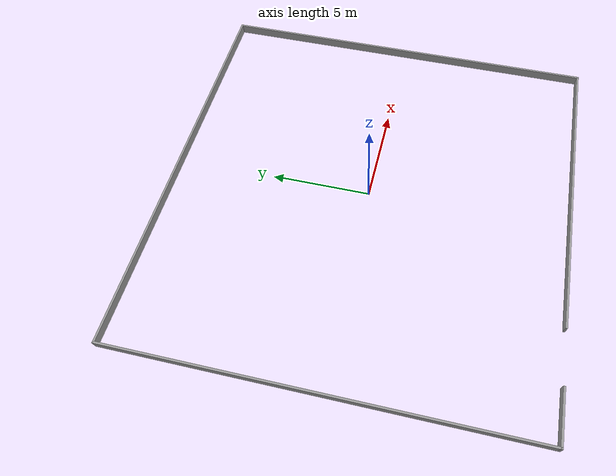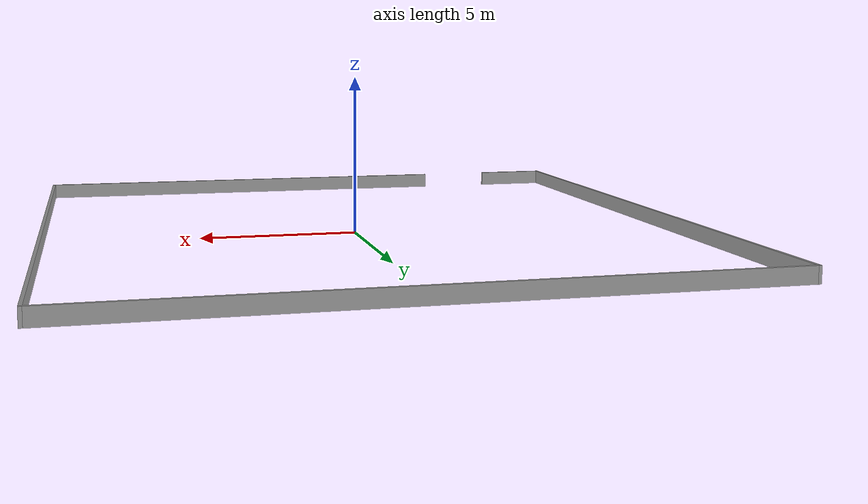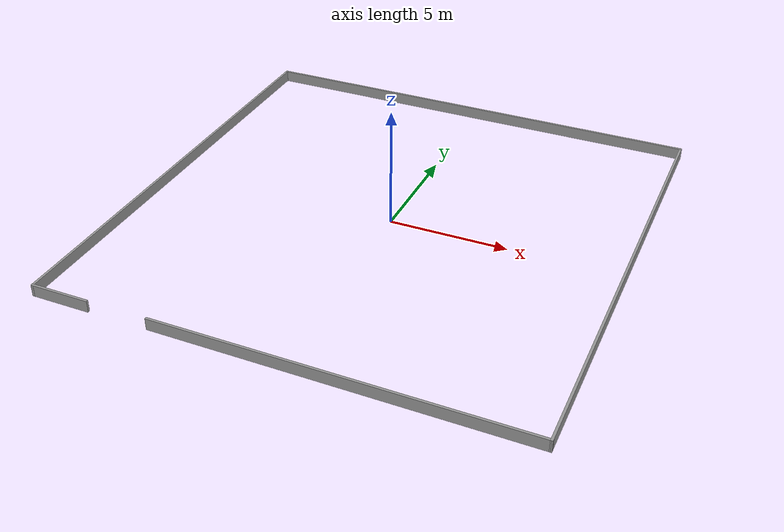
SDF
<?xml version='1.0'?>
<sdf version='1.6'>
  <model name='shape8'>
    <pose frame=''>-0.16497 0.000967 0 0 -0 0</pose>
    <link name='Wall_21'>
      <collision name='Wall_21_Collision'>
        <geometry>
          <box>
            <size>2.5 0.1 0.5</size>
          </box>
        </geometry>
        <pose frame=''>0 0 0.25 0 -0 0</pose>
      </collision>
      <visual name='Wall_21_Visual'>
        <pose frame=''>0 0 0.25 0 -0 0</pose>
        <geometry>
          <box>
            <size>2.5 0.1 0.5</size>
          </box>
        </geometry>
        <material>
          <script>
            <uri>file://media/materials/scripts/gazebo.material</uri>
            <name>Gazebo/Grey</name>
          </script>
          <ambient>1 1 1 1</ambient>
        </material>
        <meta>
          <layer>0</layer>
        </meta>
      </visual>
      <pose frame=''>-8.75003 -9.94997 0 0 -0 3.14159</pose>
    </link>
    <link name='Wall_22'>
      <collision name='Wall_22_Collision'>
        <geometry>
          <box>
            <size>20 0.1 0.5</size>
          </box>
        </geometry>
        <pose frame=''>0 0 0.25 0 -0 0</pose>
      </collision>
      <visual name='Wall_22_Visual'>
        <pose frame=''>0 0 0.25 0 -0 0</pose>
        <geometry>
          <box>
            <size>20 0.1 0.5</size>
          </box>
        </geometry>
        <material>
          <script>
            <uri>file://media/materials/scripts/gazebo.material</uri>
            <name>Gazebo/Grey</name>
          </script>
          <ambient>1 1 1 1</ambient>
        </material>
        <meta>
          <layer>0</layer>
        </meta>
      </visual>
      <pose frame=''>-9.95003 3.3e-05 0 0 -0 1.5708</pose>
    </link>
    <link name='Wall_23'>
      <collision name='Wall_23_Collision'>
        <geometry>
          <box>
            <size>20 0.1 0.5</size>
          </box>
        </geometry>
        <pose frame=''>0 0 0.25 0 -0 0</pose>
      </collision>
      <visual name='Wall_23_Visual'>
        <pose frame=''>0 0 0.25 0 -0 0</pose>
        <geometry>
          <box>
            <size>20 0.1 0.5</size>
          </box>
        </geometry>
        <material>
          <script>
            <uri>file://media/materials/scripts/gazebo.material</uri>
            <name>Gazebo/Grey</name>
          </script>
          <ambient>1 1 1 1</ambient>
        </material>
        <meta>
          <layer>0</layer>
        </meta>
      </visual>
      <pose frame=''>-3e-05 9.95003 0 0 -0 0</pose>
    </link>
    <link name='Wall_24'>
      <collision name='Wall_24_Collision'>
        <geometry>
          <box>
            <size>20 0.1 0.5</size>
          </box>
        </geometry>
        <pose frame=''>0 0 0.25 0 -0 0</pose>
      </collision>
      <visual name='Wall_24_Visual'>
        <pose frame=''>0 0 0.25 0 -0 0</pose>
        <geometry>
          <box>
            <size>20 0.1 0.5</size>
          </box>
        </geometry>
        <material>
          <script>
            <uri>file://media/materials/scripts/gazebo.material</uri>
            <name>Gazebo/Grey</name>
          </script>
          <ambient>1 1 1 1</ambient>
        </material>
        <meta>
          <layer>0</layer>
        </meta>
      </visual>
      <pose frame=''>9.94997 3.3e-05 0 0 -0 -1.5708</pose>
    </link>
    <link name='Wall_25'>
      <collision name='Wall_25_Collision'>
        <geometry>
          <box>
            <size>15 0.1 0.5</size>
          </box>
        </geometry>
        <pose frame=''>0 0 0.25 0 -0 0</pose>
      </collision>
      <visual name='Wall_25_Visual'>
        <pose frame=''>0 0 0.25 0 -0 0</pose>
        <geometry>
          <box>
            <size>15 0.1 0.5</size>
          </box>
        </geometry>
        <material>
          <script>
            <uri>file://media/materials/scripts/gazebo.material</uri>
            <name>Gazebo/Grey</name>
          </script>
          <ambient>1 1 1 1</ambient>
        </material>
        <meta>
          <layer>0</layer>
        </meta>
      </visual>
      <pose frame=''>2.49997 -9.93997 0 0 -0 3.14025</pose>
    </link>
    <static>1</static>
  </model>
</sdf>
